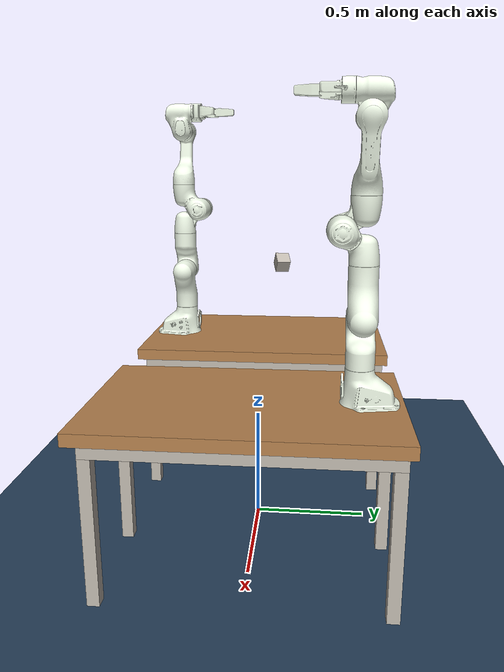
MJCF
<mujoco model="franka_handover">

    <size njmax='1000' nconmax='1000'/>

    <include file="basic_scene.xml"/>
    <include file="../franka_assets/assets.xml"/>
    <include file="../franka_assets/actuator.xml"/>
    <include file="item_assets/kettle_asset.xml"/>

    <visual>
        <global offwidth="2560" offheight="1920" />
        <quality shadowsize="4096" offsamples="8" />
        <map force="0.1" fogend="5" />
    </visual>

    <asset>
        <texture name="T_wood" type="cube" height="1" width="1" file="wood1.png" />
        <material name="wood" rgba="1 1 1 1" texture="T_wood" texrepeat="3 3" reflectance="1" shininess="1" texuniform="false" />
    </asset>

    <compiler inertiafromgeom='auto' inertiagrouprange='3 5' angle="radian" texturedir="textures" meshdir="../franka_assets/meshes"/>
    <worldbody>
        <camera name='left_cap' pos='-1.2 -0.5 1.8' quat='0.78 0.49 -0.22 -0.32' />
        <camera name='right_cap' pos='1.2 -0.5 1.8' quat='0.76 0.5 0.21 0.35'/>

        <!-- both panda arms -->
        <body pos="0 0 0.76">
            <include file="../franka_assets/chain.xml"/>
        </body>

        <!-- panda reciever table -->
        <body name="panda_receiver_table" pos="0.5 0 0" quat="1 0 0 1">
            <geom material="wood" name= "reciever_table_top" type="box" size=".6 .375 .025" pos="0 0 0.735" mass="2000" contype='1' condim='3' conaffinity='1'/>
            <geom material="metal" name= "reciever_table_under_top" type="box" size="0.59 0.26 .05" pos="0 0 0.66" mass="2000" contype='1' condim='3' conaffinity='1'/>
            <geom material="metal" name= "reciever_table_leg_1" type="box" size="0.025 0.025 0.305" pos="-0.565 0.235 0.305" mass="2000" contype='1' condim='3' conaffinity='1'/>
            <geom material="metal" name= "reciever_table_leg_2" type="box" size="0.025 0.025 0.305" pos="-0.565 -0.235 0.305" mass="2000" contype='1' condim='3' conaffinity='1'/>
            <geom material="metal" name= "reciever_table_leg_3" type="box" size="0.025 0.025 0.305" pos="0.565 0.235 0.305" mass="2000" contype='1' condim='3' conaffinity='1'/>
            <geom material="metal" name= "reciever_table_leg_4" type="box" size="0.025 0.025 0.305" pos="0.565 -0.235 0.305" mass="2000" contype='1' condim='3' conaffinity='1'/>
        </body>

        <!-- panda giver table -->
        <body name="panda_giver_table" pos="-0.5 0 0" quat="1 0 0 1">
            <geom material="wood" name= "giver_table_top" type="box" size=".6 .375 .025" pos="0 0 0.735" mass="2000" contype='1' condim='3' conaffinity='1'/>
            <geom material="metal" name= "giver_table_under_top" type="box" size="0.59 0.26 .05" pos="0 0 0.66" mass="2000" contype='1' condim='3' conaffinity='1'/>
            <geom material="metal" name= "giver_table_leg_1" type="box" size="0.025 0.025 0.305" pos="-0.565 0.235 0.305" mass="2000" contype='1' condim='3' conaffinity='1'/>
            <geom material="metal" name= "giver_table_leg_2" type="box" size="0.025 0.025 0.305" pos="-0.565 -0.235 0.305" mass="2000" contype='1' condim='3' conaffinity='1'/>
            <geom material="metal" name= "giver_table_leg_3" type="box" size="0.025 0.025 0.305" pos="0.565 0.235 0.305" mass="2000" contype='1' condim='3' conaffinity='1'/>
            <geom material="metal" name= "giver_table_leg_4" type="box" size="0.025 0.025 0.305" pos="0.565 -0.235 0.305" mass="2000" contype='1' condim='3' conaffinity='1'/>
        </body>

        <!-- pickup model -->

        <!-- handover model -->
        <body name="box" pos="-0.6085814849014785 0.07508903725397244 1.122486051758938" quat="0.5805981864868907 0.1692652163984967 0.25019682345647204 0.7561263871458314">
            <freejoint name="box"/>
            <include file="item_assets/kettle_chain.xml"/>
        </body>

    </worldbody>
</mujoco>

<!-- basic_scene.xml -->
<mujocoinclude>
    <asset>
        <texture type="skybox" builtin="gradient" rgb1="0.3 0.5 0.7" rgb2="0 0 0" width="512" height="3072"/>
        <texture type="2d" name="groundplane" builtin="checker" mark="edge" rgb1="0.2 0.3 0.4" rgb2="0.1 0.2 0.3"
        markrgb="0.8 0.8 0.8" width="300" height="300"/>
        <material name="groundplane" texture="groundplane" texuniform="true" texrepeat="5 5" reflectance="0.2"/>
    </asset>

    <visual>
    <headlight diffuse="0.6 0.6 0.6" ambient="0.3 0.3 0.3" specular="0 0 0"/>
        <rgba haze="0.15 0.25 0.35 1"/>
        <global azimuth="120" elevation="-20"/>
    </visual>

    <worldbody>
        <light pos="0 0 8" dir="0 0 -1" directional="true"/>
        <geom name="floor" size="0 0 0.05" type="plane" material="groundplane"/>

        <site name='xaxis' pos='.5 0 0' size='.005 .5' type='capsule' rgba='1 0 0 .25' euler='0 1.57 0' group='3'/>
        <site name='yaxis' pos='0 .5 0' size='.005 .5' type='capsule' rgba='0 1 0 .25' euler='1.57 0 0' group='3'/>
    </worldbody>
</mujocoinclude>

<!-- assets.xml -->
<mujocoinclude>
    <compiler angle="radian" meshdir="franka_assets/meshes"/>

    <option timestep="0.002"/>
    <size nuser_actuator="5"/>

    <asset>
        <mesh name="link0_col" file="collision/link0.stl"/>
        <mesh name="link1_col" file="collision/link1.stl"/>
        <mesh name="link2_col" file="collision/link2.stl"/>
        <mesh name="link3_col" file="collision/link3.stl"/>
        <mesh name="link4_col" file="collision/link4.stl"/>
        <mesh name="link5_col" file="collision/link5.stl"/>
        <mesh name="link6_col" file="collision/link6.stl"/>
        <mesh name="link7_col" file="collision/link7.stl"/>
        <mesh name="hand_col" file="collision/hand.stl"/>
        <mesh name="finger_col" file="collision/finger.stl" scale='1.75 1.0 1.75'/>
        <mesh name="link0_viz" file="visual/link0.stl"/>
        <mesh name="link1_viz" file="visual/link1.stl"/>
        <mesh name="link2_viz" file="visual/link2.stl"/>
        <mesh name="link3_viz" file="visual/link3.stl"/>
        <mesh name="link4_viz" file="visual/link4.stl"/>
        <mesh name="link5_viz" file="visual/link5.stl"/>
        <mesh name="link6_viz" file="visual/link6.stl"/>
        <mesh name="link7_viz" file="visual/link7.stl"/>
        <mesh name="hand_viz" file="visual/hand.stl"/>
        <mesh name="finger_viz" file="collision/finger.stl" scale='1.75 1.0 1.75'/>

    </asset>

    <default>
        <default class="panda">
            <joint pos="0 0 0" axis="0 0 1" limited="true"/>
            <position forcelimited="true" ctrllimited="true" user="1002 40 2001 -0.005 0.005"/>
            <default class="panda_viz">
                <geom contype="0" conaffinity="0" group="0" type="mesh" rgba=".95 .99 .92 1" mass="0"/>
            </default>

            <default class="panda_col">
                <geom contype="1" conaffinity="1" group="3" type="mesh" rgba=".5 .6 .7 1"/>
            </default>
            <default class="panda_arm">
                <joint damping="100"/>
            </default>
             <default class="panda_forearm">
                <joint damping="10"/>
            </default>
             <default class="panda_finger">
                <joint damping="100" armature='5'/>
                <geom friction="1 0.5 0.0001" solref="0.01 1" solimp="0.8 0.9 0.001" margin="0.001" user="0" rgba="0.5 0.6 0.7 .4" contype="1" conaffinity="0" condim="6" group="3" />
                <position user="1002 40 2001 -0.0001 0.0001"/>
            </default>
        </default>

        <default class="panda_overlay">
            <joint limited="false" damping="1000" armature="1" frictionloss="10"/>
            <geom contype="0" conaffinity="0" group="2" type="mesh" rgba=".42 0.42 0.42 .5"/>
        </default>
    </default>

</mujocoinclude>

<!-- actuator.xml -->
<mujocoinclude>
	<actuator>
        <position name="panda_giver_joint1" joint="robot:panda_giver_joint1" class="panda" kp="870" forcerange="-87 87" ctrlrange="-2.9671 2.9671"/> <!-- velocity="2.1750" -->
        <position name="panda_giver_joint2" joint="robot:panda_giver_joint2" class="panda" kp="870" forcerange="-87 87" ctrlrange="-1.8326 1.8326"/> <!-- velocity="2.1750" -->
        <position name="panda_giver_joint3" joint="robot:panda_giver_joint3" class="panda" kp="870" forcerange="-87 87" ctrlrange="-2.9671 2.9671"/> <!-- velocity="2.1750" -->
        <position name="panda_giver_joint4" joint="robot:panda_giver_joint4" class="panda" kp="870" forcerange="-87 87" ctrlrange="-3.1416 0.0"/> <!-- velocity="2.1750" -->
        <position name="panda_giver_joint5" joint="robot:panda_giver_joint5" class="panda" kp="120" forcerange="-12 12" ctrlrange="-2.9671 2.9671"/> <!-- velocity="2.6100" -->
        <position name="panda_giver_joint6" joint="robot:panda_giver_joint6" class="panda" kp="120" forcerange="-12 12" ctrlrange="-3.7525 2.1817"/> <!-- velocity="2.6100" -->
        <position name="panda_giver_joint7" joint="robot:panda_giver_joint7" class="panda" kp="120" forcerange="-12 12" ctrlrange="-2.9671 2.9671"/> <!-- velocity="2.9671" -->
        <position name="panda_giver_r_gripper_finger_joint" joint="robot:panda_giver_finger_joint1" class="panda_finger" kp="500" forcerange="-70 70" ctrlrange="0 0.04"/> <!-- velocity=".2" -->
        <position name="panda_giver_l_gripper_finger_joint" joint="robot:panda_giver_finger_joint2" class="panda_finger" kp="500" forcerange="-70 70" ctrlrange="0 0.04"/> <!-- velocity=".2" -->

        <position name="panda_reciever_joint1" joint="robot:panda_reciever_joint1" class="panda" kp="870" forcerange="-87 87" ctrlrange="-2.9671 2.9671"/> <!-- velocity="2.1750" -->
        <position name="panda_reciever_joint2" joint="robot:panda_reciever_joint2" class="panda" kp="870" forcerange="-87 87" ctrlrange="-1.8326 1.8326"/> <!-- velocity="2.1750" -->
        <position name="panda_reciever_joint3" joint="robot:panda_reciever_joint3" class="panda" kp="870" forcerange="-87 87" ctrlrange="-2.9671 2.9671"/> <!-- velocity="2.1750" -->
        <position name="panda_reciever_joint4" joint="robot:panda_reciever_joint4" class="panda" kp="870" forcerange="-87 87" ctrlrange="-3.1416 0.0"/> <!-- velocity="2.1750" -->
        <position name="panda_reciever_joint5" joint="robot:panda_reciever_joint5" class="panda" kp="120" forcerange="-12 12" ctrlrange="-2.9671 2.9671"/> <!-- velocity="2.6100" -->
        <position name="panda_reciever_joint6" joint="robot:panda_reciever_joint6" class="panda" kp="120" forcerange="-12 12" ctrlrange="-3.7525 2.1817"/> <!-- velocity="2.6100" -->
        <position name="panda_reciever_joint7" joint="robot:panda_reciever_joint7" class="panda" kp="120" forcerange="-12 12" ctrlrange="-2.9671 2.9671"/> <!-- velocity="2.9671" -->
        <position name="panda_reciever_r_gripper_finger_joint" joint="robot:panda_reciever_finger_joint1" class="panda_finger" kp="500" forcerange="-70 70" ctrlrange="0 0.04"/> <!-- velocity=".2" -->
        <position name="panda_reciever_l_gripper_finger_joint" joint="robot:panda_reciever_finger_joint2" class="panda_finger" kp="500" forcerange="-70 70" ctrlrange="0 0.04"/> <!-- velocity=".2" -->
    </actuator>
</mujocoinclude>

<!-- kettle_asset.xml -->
<mujocoinclude>
    <compiler inertiafromgeom="auto" inertiagrouprange="4 4" angle="radian"/>
    <asset>
        <texture name="T_metal" type="cube" height="1" width="1" file="metal1.png" />
        <material name="metal" rgba="1 1 1 1" texture="T_metal" texrepeat="3 3" reflectance="1" shininess="1" texuniform="false" />

        <material name="none" rgba="0.5 0.5 0.5 1" reflectance="0" shininess="0"/>
        <material name="object_collision_material" rgba="0.3 0.3 1.0 0.5" shininess="0" specular="0"/>
    </asset>
    <default class="object">
        <joint damping="2" frictionloss="2" armature=".01" limited="true"/>
        <geom conaffinity="0" contype="0" group="1" material="none" type="box"/>
        <default class="object_collision">
            <geom conaffinity="1" condim="4" contype="1" group="4" margin="0.001" material="object_collision_material" solimp=".8 .9 .01" solref=".02 1" type="box"/>
        </default>
    </default>
</mujocoinclude>

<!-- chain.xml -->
<mujocoinclude>
    <body name="panda" childclass="panda">
        <body name="panda_giver_link0" childclass="panda" pos="-0.5 -0.425 0" euler="0 0 1.5708">
            <geom class="panda_viz" mesh="link0_viz"/>
            <geom class="panda_col" mesh="link0_col" mass="2.91242" name="giver_link0_col"/>
            <body name="panda_giver_link1" pos="0 0 0.333">
                <joint name="robot:panda_giver_joint1" range="-2.8973 2.8973" class="panda_arm"/>
                <geom class="panda_viz" mesh="link1_viz"/>
                <geom class="panda_col" mesh="link1_col" mass="2.7063" name="giver_link1_col"/>
                <body name="panda_giver_link2" pos="0 0 0" quat="0.707107 -0.707107 0 0">
                    <joint name="robot:panda_giver_joint2" range="-1.7628 1.7628" class="panda_arm"/>
                    <geom class="panda_viz" mesh="link2_viz"/>
                    <geom class="panda_col" mesh="link2_col" mass="2.73046" name="giver_link2_col"/>
                    <body name="panda_giver_link3" pos="0 -0.316 0" quat="0.707107 0.707107 0 0">
                        <joint name="robot:panda_giver_joint3" range="-2.8973 2.8973" class="panda_arm"/>
                        <geom class="panda_viz" mesh="link3_viz"/>
                        <geom class="panda_col" mesh="link3_col" mass="2.04104" name="giver_link3_col"/>
                        <body name="panda_giver_link4" pos="0.0825 0 0" quat="0.707107 0.707107 0 0">
                            <joint name="robot:panda_giver_joint4" range="-3.0718 -0.4" class="panda_arm"/>
                            <geom class="panda_viz" mesh="link4_viz"/>
                            <geom class="panda_col" mesh="link4_col" mass="2.08129" name="giver_link4_col"/>
                            <body name="panda_giver_link5" pos="-0.0825 0.384 0" quat="0.707107 -0.707107 0 0">
                                <joint name="robot:panda_giver_joint5" range="-2.8973 2.8973" class="panda_forearm"/>
                                <geom class="panda_viz" mesh="link5_viz"/>
                                <geom class="panda_col" mesh="link5_col" mass="3.00049" name="giver_link5_col"/>
                                <body name="panda_giver_link6" pos="0 0 0" euler='1.57 0 1.57'>
                                    <joint name="robot:panda_giver_joint6" range="-1.6573 2.1127" class="panda_forearm"/>
                                    <geom class="panda_viz" mesh="link6_viz"/>
                                    <geom class="panda_col" mesh="link6_col" mass="1.3235" name="giver_link6_col"/>
                                    <body name="panda_giver_link7" pos="0.088 0 0" euler='1.57 0 0.7854'>
                                        <joint name="robot:panda_giver_joint7" range="-2.8973 2.8973" class="panda_forearm"/>
                                        <geom class="panda_viz" mesh="link7_viz"/>
                                        <geom class="panda_col" mesh="link7_col" mass="0.2"  name="giver_link7_col"/>
                                        <geom pos="0 0 0.107" quat="0.92388 0 0 -0.382683" class="panda_viz" mesh="hand_viz"/>
                                        <geom pos="0 0 0.107" quat="0.92388 0 0 -0.382683" class="panda_col" mesh="hand_col" mass="0.81909" name="giver_hand_col"/>
                                        <site name='panda_giver_end_effector' pos='0 0 .22' size='0.01' euler='0 0 -0.785398'/>
                                        <body name="panda_giver_leftfinger" pos="0 0 0.1654" quat="0.92388 0 0 -0.382683" childclass='panda_finger'>
                                            <inertial pos="-1.57863e-05 0.0118731 0.0434103" quat="0.705868 0.0310348 -0.0314925 0.706962" mass="0.0927059" diaginertia="6.57134e-05 6.09611e-05 1.09932e-05" />
                                            <joint name="robot:panda_giver_finger_joint1"  axis="0 1 0" type="slide" range="0 0.04" class="panda_finger"/>
                                            <geom class="panda_viz" mesh="finger_viz"/>
                                            <geom class="panda_col" mesh="finger_col" name="giver_leftfinger_col"/>

                                            <geom size="0.005 0.0005 0.025" pos="0 0 0.05" type="box" name="giver_leftfinger_flat_col"/>

                                        </body>
                                        <body name="panda_giver_rightfinger" pos="0 0 0.1654" quat="0.92388 0 0 -0.382683"  childclass='panda_finger'>
                                            <inertial pos="1.57863e-05 -0.0118731 0.0434103" quat="0.705868 -0.0310348 0.0314925 0.706962" mass="0.0927059" diaginertia="6.57134e-05 6.09611e-05 1.09932e-05" />
                                            <joint name="robot:panda_giver_finger_joint2" axis="0 -1 0" type="slide" range="0 0.04" class="panda_finger"/>
                                            <geom quat="0 0 0 1" class="panda_viz" mesh="finger_viz"/>
                                            <geom quat="0 0 0 1" class="panda_col" mesh="finger_col" name="giver_rightfinger_col"/>

                                            <geom size="0.005 0.0005 0.025" pos="0 0 0.05" type="box" name="giver_rightfinger_flat_col"/>

                                            <!-- inside finger (width in terms of across finger face);(width between gap);(height,len finger) -->

                                            <!-- TODO MAYBE -->

                                        </body>
                                    </body>
                                </body>
                            </body>
                        </body>
                    </body>
                </body>
            </body>
        </body>

        <body name="panda_reciever_link0" childclass="panda" pos="0.5 0.425 0" euler="0 0 -1.5708">
            <geom class="panda_viz" mesh="link0_viz"/>
            <geom class="panda_col" mesh="link0_col" mass="2.91242" name="reciever_link0_col"/>
            <body name="panda_reciever_link1" pos="0 0 0.333">
                <joint name="robot:panda_reciever_joint1" range="-2.8973 2.8973" class="panda_arm"/>
                <geom class="panda_viz" mesh="link1_viz"/>
                <geom class="panda_col" mesh="link1_col" mass="2.7063" name="reciever_link1_col"/>
                <body name="panda_reciever_link2" pos="0 0 0" quat="0.707107 -0.707107 0 0">
                    <joint name="robot:panda_reciever_joint2" range="-1.7628 1.7628" class="panda_arm"/>
                    <geom class="panda_viz" mesh="link2_viz"/>
                    <geom class="panda_col" mesh="link2_col" mass="2.73046" name="reciever_link2_col"/>
                    <body name="panda_reciever_link3" pos="0 -0.316 0" quat="0.707107 0.707107 0 0">
                        <joint name="robot:panda_reciever_joint3" range="-2.8973 2.8973" class="panda_arm"/>
                        <geom class="panda_viz" mesh="link3_viz"/>
                        <geom class="panda_col" mesh="link3_col" mass="2.04104"  name="reciever_link3_col"/>
                        <body name="panda_reciever_link4" pos="0.0825 0 0" quat="0.707107 0.707107 0 0">
                            <joint name="robot:panda_reciever_joint4" range="-3.0718 -0.4" class="panda_arm"/>
                            <geom class="panda_viz" mesh="link4_viz"/>
                            <geom class="panda_col" mesh="link4_col" mass="2.08129"  name="reciever_link4_col"/>
                            <body name="panda_reciever_link5" pos="-0.0825 0.384 0" quat="0.707107 -0.707107 0 0">
                                <joint name="robot:panda_reciever_joint5" range="-2.8973 2.8973" class="panda_forearm"/>
                                <geom class="panda_viz" mesh="link5_viz"/>
                                <geom class="panda_col" mesh="link5_col" mass="3.00049"  name="reciever_link5_col"/>
                                <body name="panda_reciever_link6" pos="0 0 0" euler='1.57 0 1.57'>
                                    <joint name="robot:panda_reciever_joint6" range="-1.6573 2.1127" class="panda_forearm"/>
                                    <geom class="panda_viz" mesh="link6_viz"/>
                                    <geom class="panda_col" mesh="link6_col" mass="1.3235" name="reciever_link6_col"/>
                                    <body name="panda_reciever_link7" pos="0.088 0 0" euler='1.57 0 0.7854'>
                                        <joint name="robot:panda_reciever_joint7" range="-2.8973 2.8973" class="panda_forearm"/>
                                        <geom class="panda_viz" mesh="link7_viz"/>
                                        <geom class="panda_col" mesh="link7_col" mass="0.2" name="reciever_link7_col"/>
                                        <geom pos="0 0 0.107" quat="0.92388 0 0 -0.382683" class="panda_viz" mesh="hand_viz"/>
                                        <geom pos="0 0 0.107" quat="0.92388 0 0 -0.382683" class="panda_col" mesh="hand_col" mass="0.81909" name="reciever_hand_col"/>
                                        <site name='panda_reciever_end_effector' pos='0 0 .22' size='0.01' euler='0 0 -0.785398'/>
                                        <body name="panda_reciever_leftfinger" pos="0 0 0.1654" quat="0.92388 0 0 -0.382683" childclass='panda_finger'>
                                            <inertial pos="-1.57863e-05 0.0118731 0.0434103" quat="0.705868 0.0310348 -0.0314925 0.706962" mass="0.0927059" diaginertia="6.57134e-05 6.09611e-05 1.09932e-05" />
                                            <joint name="robot:panda_reciever_finger_joint1"  axis="0 1 0" type="slide" range="0 0.04" class="panda_finger"/>
                                            <geom class="panda_viz" mesh="finger_viz"/>
                                            <geom class="panda_col" mesh="finger_col" name="reciever_leftfinger_col"/>

                                            <geom size="0.005 0.0005 0.025" pos="0 0 0.05" type="box" name="reciever_leftfinger_flat_col"/>

                                        </body>
                                        <body name="panda_reciever_rightfinger" pos="0 0 0.1654" quat="0.92388 0 0 -0.382683"  childclass='panda_finger'>
                                            <inertial pos="1.57863e-05 -0.0118731 0.0434103" quat="0.705868 -0.0310348 0.0314925 0.706962" mass="0.0927059" diaginertia="6.57134e-05 6.09611e-05 1.09932e-05" />
                                            <joint name="robot:panda_reciever_finger_joint2" axis="0 -1 0" type="slide" range="0 0.04" class="panda_finger"/>
                                            <geom quat="0 0 0 1" class="panda_viz" mesh="finger_viz"/>
                                            <geom quat="0 0 0 1" class="panda_col" mesh="finger_col" name="reciever_rightfinger_col"/>

                                            <geom size="0.005 0.0005 0.025" pos="0 0 0.05" type="box" name="reciever_rightfinger_flat_col"/>
                                        </body>
                                    </body>
                                </body>
                            </body>
                        </body>
                    </body>
                </body>
            </body>
        </body>
    </body>
</mujocoinclude>

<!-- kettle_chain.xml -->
<mujocoinclude>
    <body name="objectroot" childclass="object">
        <geom material="metal" name="object" size="0.035 0.035 0.035"/>
        <geom class="object_collision"  name="object_collision"  size="0.035 0.035 0.035" mass="1"/>
        <site type="sphere" name="object_site" pos="0 0 0" size=".01" group="3" rgba="1 0 0 1"/>
    </body>
</mujocoinclude>
